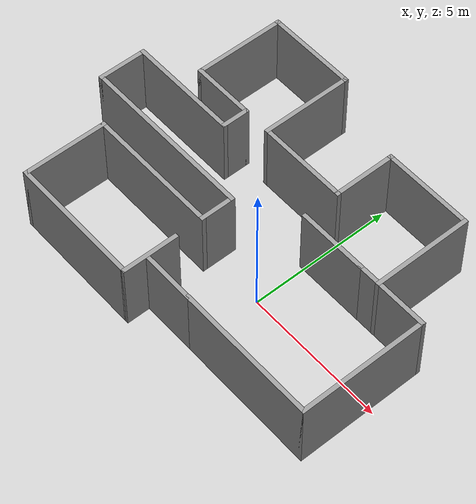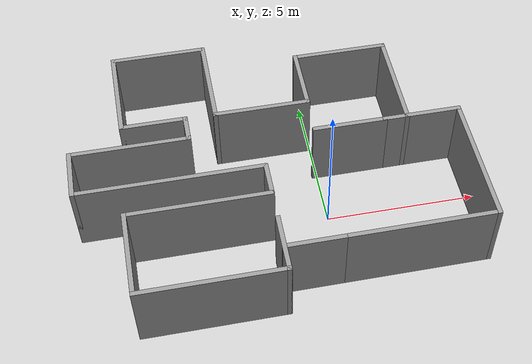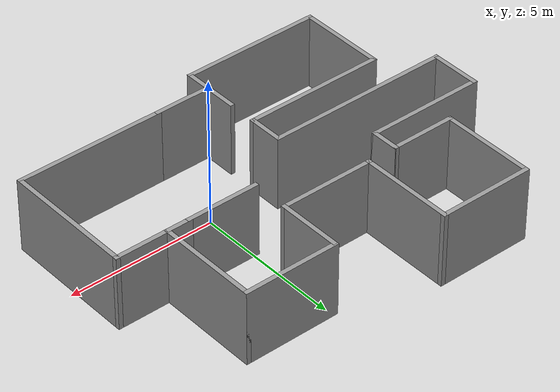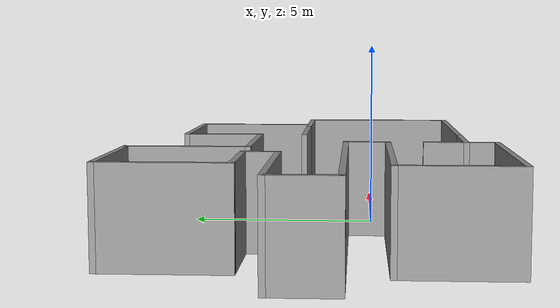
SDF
<?xml version='1.0'?>
<sdf version='1.7'>
  <model name='my_house'>
    <pose>-1.64 1.49 0 0 -0 0</pose>
    <link name='Wall_16'>
      <collision name='Wall_16_Collision'>
        <geometry>
          <box>
            <size>2.25 0.15 2.5</size>
          </box>
        </geometry>
        <pose>0 0 1.25 0 -0 0</pose>
      </collision>
      <visual name='Wall_16_Visual'>
        <pose>0 0 1.25 0 -0 0</pose>
        <geometry>
          <box>
            <size>2.25 0.15 2.5</size>
          </box>
        </geometry>
        <material>
          <script>
            <uri>file://media/materials/scripts/gazebo.material</uri>
            <name>Gazebo/Grey</name>
          </script>
          <ambient>1 1 1 1</ambient>
        </material>
        <meta>
          <layer>0</layer>
        </meta>
      </visual>
      <pose>1.55 2.7 0 0 -0 -1.5708</pose>
    </link>
    <link name='Wall_21'>
      <collision name='Wall_21_Collision'>
        <geometry>
          <box>
            <size>3.25 0.15 2.5</size>
          </box>
        </geometry>
        <pose>0 0 1.25 0 -0 0</pose>
      </collision>
      <visual name='Wall_21_Visual'>
        <pose>0 0 1.25 0 -0 0</pose>
        <geometry>
          <box>
            <size>3.25 0.15 2.5</size>
          </box>
        </geometry>
        <material>
          <script>
            <uri>file://media/materials/scripts/gazebo.material</uri>
            <name>Gazebo/Grey</name>
          </script>
          <ambient>1 1 1 1</ambient>
        </material>
        <meta>
          <layer>0</layer>
        </meta>
      </visual>
      <pose>-0 1.65 0 0 -0 3.14159</pose>
    </link>
    <link name='Wall_23'>
      <collision name='Wall_23_Collision'>
        <geometry>
          <box>
            <size>3.25 0.15 2.5</size>
          </box>
        </geometry>
        <pose>0 0 1.25 0 -0 0</pose>
      </collision>
      <visual name='Wall_23_Visual'>
        <pose>0 0 1.25 0 -0 0</pose>
        <geometry>
          <box>
            <size>3.25 0.15 2.5</size>
          </box>
        </geometry>
        <material>
          <script>
            <uri>file://media/materials/scripts/gazebo.material</uri>
            <name>Gazebo/Grey</name>
          </script>
          <ambient>1 1 1 1</ambient>
        </material>
        <meta>
          <layer>0</layer>
        </meta>
      </visual>
      <pose>-1.55 3.2 0 0 -0 1.5708</pose>
    </link>
    <link name='Wall_24'>
      <collision name='Wall_24_Collision'>
        <geometry>
          <box>
            <size>3.25 0.15 2.5</size>
          </box>
        </geometry>
        <pose>0 0 1.25 0 -0 0</pose>
      </collision>
      <visual name='Wall_24_Visual'>
        <pose>0 0 1.25 0 -0 0</pose>
        <geometry>
          <box>
            <size>3.25 0.15 2.5</size>
          </box>
        </geometry>
        <material>
          <script>
            <uri>file://media/materials/scripts/gazebo.material</uri>
            <name>Gazebo/Grey</name>
          </script>
          <ambient>1 1 1 1</ambient>
        </material>
        <meta>
          <layer>0</layer>
        </meta>
      </visual>
      <pose>-3.1 4.75 0 0 -0 3.14159</pose>
    </link>
    <link name='Wall_25'>
      <collision name='Wall_25_Collision'>
        <geometry>
          <box>
            <size>3.25 0.15 2.5</size>
          </box>
        </geometry>
        <pose>0 0 1.25 0 -0 0</pose>
      </collision>
      <visual name='Wall_25_Visual'>
        <pose>0 0 1.25 0 -0 0</pose>
        <geometry>
          <box>
            <size>3.25 0.15 2.5</size>
          </box>
        </geometry>
        <material>
          <script>
            <uri>file://media/materials/scripts/gazebo.material</uri>
            <name>Gazebo/Grey</name>
          </script>
          <ambient>1 1 1 1</ambient>
        </material>
        <meta>
          <layer>0</layer>
        </meta>
      </visual>
      <pose>-4.65 3.2 0 0 -0 -1.5708</pose>
    </link>
    <link name='Wall_26'>
      <collision name='Wall_26_Collision'>
        <geometry>
          <box>
            <size>2.25 0.15 2.5</size>
          </box>
        </geometry>
        <pose>0 0 1.25 0 -0 0</pose>
      </collision>
      <visual name='Wall_26_Visual'>
        <pose>0 0 1.25 0 -0 0</pose>
        <geometry>
          <box>
            <size>2.25 0.15 2.5</size>
          </box>
        </geometry>
        <material>
          <script>
            <uri>file://media/materials/scripts/gazebo.material</uri>
            <name>Gazebo/Grey</name>
          </script>
          <ambient>1 1 1 1</ambient>
        </material>
        <meta>
          <layer>0</layer>
        </meta>
      </visual>
      <pose>-3.6 1.65 0 0 -0 0</pose>
    </link>
    <link name='Wall_28'>
      <collision name='Wall_28_Collision'>
        <geometry>
          <box>
            <size>1 0.15 2.5</size>
          </box>
        </geometry>
        <pose>0 0 1.25 0 -0 0</pose>
      </collision>
      <visual name='Wall_28_Visual'>
        <pose>0 0 1.25 0 -0 0</pose>
        <geometry>
          <box>
            <size>1 0.15 2.5</size>
          </box>
        </geometry>
        <material>
          <script>
            <uri>file://media/materials/scripts/gazebo.material</uri>
            <name>Gazebo/Grey</name>
          </script>
          <ambient>1 1 1 1</ambient>
        </material>
        <meta>
          <layer>0</layer>
        </meta>
      </visual>
      <pose>-2.55 1.225 0 0 -0 -1.5708</pose>
    </link>
    <link name='Wall_29'>
      <collision name='Wall_29_Collision'>
        <geometry>
          <box>
            <size>4 0.15 2.5</size>
          </box>
        </geometry>
        <pose>0 0 1.25 0 -0 0</pose>
      </collision>
      <visual name='Wall_29_Visual'>
        <pose>0 0 1.25 0 -0 0</pose>
        <geometry>
          <box>
            <size>4 0.15 2.5</size>
          </box>
        </geometry>
        <material>
          <script>
            <uri>file://media/materials/scripts/gazebo.material</uri>
            <name>Gazebo/Grey</name>
          </script>
          <ambient>1 1 1 1</ambient>
        </material>
        <meta>
          <layer>0</layer>
        </meta>
      </visual>
      <pose>-4.475 0.8 0 0 -0 3.14159</pose>
    </link>
    <link name='Wall_30'>
      <collision name='Wall_30_Collision'>
        <geometry>
          <box>
            <size>1.75 0.15 2.5</size>
          </box>
        </geometry>
        <pose>0 0 1.25 0 -0 0</pose>
      </collision>
      <visual name='Wall_30_Visual'>
        <pose>0 0 1.25 0 -0 0</pose>
        <geometry>
          <box>
            <size>1.75 0.15 2.5</size>
          </box>
        </geometry>
        <material>
          <script>
            <uri>file://media/materials/scripts/gazebo.material</uri>
            <name>Gazebo/Grey</name>
          </script>
          <ambient>1 1 1 1</ambient>
        </material>
        <meta>
          <layer>0</layer>
        </meta>
      </visual>
      <pose>-6.4 -0 0 0 -0 -1.5708</pose>
    </link>
    <link name='Wall_31'>
      <collision name='Wall_31_Collision'>
        <geometry>
          <box>
            <size>6.25 0.15 2.5</size>
          </box>
        </geometry>
        <pose>0 0 1.25 0 -0 0</pose>
      </collision>
      <visual name='Wall_31_Visual'>
        <pose>0 0 1.25 0 -0 0</pose>
        <geometry>
          <box>
            <size>6.25 0.15 2.5</size>
          </box>
        </geometry>
        <material>
          <script>
            <uri>file://media/materials/scripts/gazebo.material</uri>
            <name>Gazebo/Grey</name>
          </script>
          <ambient>1 1 1 1</ambient>
        </material>
        <meta>
          <layer>0</layer>
        </meta>
      </visual>
      <pose>-3.35 -0.8 0 0 -0 0</pose>
    </link>
    <link name='Wall_33'>
      <collision name='Wall_33_Collision'>
        <geometry>
          <box>
            <size>1.25 0.15 2.5</size>
          </box>
        </geometry>
        <pose>0 0 1.25 0 -0 0</pose>
      </collision>
      <visual name='Wall_33_Visual'>
        <pose>0 0 1.25 0 -0 0</pose>
        <geometry>
          <box>
            <size>1.25 0.15 2.5</size>
          </box>
        </geometry>
        <material>
          <script>
            <uri>file://media/materials/scripts/gazebo.material</uri>
            <name>Gazebo/Grey</name>
          </script>
          <ambient>1 1 1 1</ambient>
        </material>
        <meta>
          <layer>0</layer>
        </meta>
      </visual>
      <pose>-0.3 -1.35 0 0 -0 -1.5708</pose>
    </link>
    <link name='Wall_34'>
      <collision name='Wall_34_Collision'>
        <geometry>
          <box>
            <size>4.75 0.15 2.5</size>
          </box>
        </geometry>
        <pose>0 0 1.25 0 -0 0</pose>
      </collision>
      <visual name='Wall_34_Visual'>
        <pose>0 0 1.25 0 -0 0</pose>
        <geometry>
          <box>
            <size>4.75 0.15 2.5</size>
          </box>
        </geometry>
        <material>
          <script>
            <uri>file://media/materials/scripts/gazebo.material</uri>
            <name>Gazebo/Grey</name>
          </script>
          <ambient>1 1 1 1</ambient>
        </material>
        <meta>
          <layer>0</layer>
        </meta>
      </visual>
      <pose>-2.6 -1.9 0 0 -0 3.14159</pose>
    </link>
    <link name='Wall_36'>
      <collision name='Wall_36_Collision'>
        <geometry>
          <box>
            <size>3 0.15 2.5</size>
          </box>
        </geometry>
        <pose>0 0 1.25 0 -0 0</pose>
      </collision>
      <visual name='Wall_36_Visual'>
        <pose>0 0 1.25 0 -0 0</pose>
        <geometry>
          <box>
            <size>3 0.15 2.5</size>
          </box>
        </geometry>
        <material>
          <script>
            <uri>file://media/materials/scripts/gazebo.material</uri>
            <name>Gazebo/Grey</name>
          </script>
          <ambient>1 1 1 1</ambient>
        </material>
        <meta>
          <layer>0</layer>
        </meta>
      </visual>
      <pose>-4.9 -3.325 0 0 -0 -1.5708</pose>
    </link>
    <link name='Wall_37'>
      <collision name='Wall_37_Collision'>
        <geometry>
          <box>
            <size>4.75 0.15 2.5</size>
          </box>
        </geometry>
        <pose>0 0 1.25 0 -0 0</pose>
      </collision>
      <visual name='Wall_37_Visual'>
        <pose>0 0 1.25 0 -0 0</pose>
        <geometry>
          <box>
            <size>4.75 0.15 2.5</size>
          </box>
        </geometry>
        <material>
          <script>
            <uri>file://media/materials/scripts/gazebo.material</uri>
            <name>Gazebo/Grey</name>
          </script>
          <ambient>1 1 1 1</ambient>
        </material>
        <meta>
          <layer>0</layer>
        </meta>
      </visual>
      <pose>-2.6 -4.75 0 0 -0 0</pose>
    </link>
    <link name='Wall_38'>
      <collision name='Wall_38_Collision'>
        <geometry>
          <box>
            <size>2 0.15 2.5</size>
          </box>
        </geometry>
        <pose>0 0 1.25 0 -0 0</pose>
      </collision>
      <visual name='Wall_38_Visual'>
        <pose>0 0 1.25 0 -0 0</pose>
        <geometry>
          <box>
            <size>2 0.15 2.5</size>
          </box>
        </geometry>
        <material>
          <script>
            <uri>file://media/materials/scripts/gazebo.material</uri>
            <name>Gazebo/Grey</name>
          </script>
          <ambient>1 1 1 1</ambient>
        </material>
        <meta>
          <layer>0</layer>
        </meta>
      </visual>
      <pose>-0.3 -3.825 0 0 -0 1.5708</pose>
    </link>
    <link name='Wall_40'>
      <collision name='Wall_40_Collision'>
        <geometry>
          <box>
            <size>2 0.15 2.5</size>
          </box>
        </geometry>
        <pose>0 0 1.25 0 -0 0</pose>
      </collision>
      <visual name='Wall_40_Visual'>
        <pose>0 0 1.25 0 -0 0</pose>
        <geometry>
          <box>
            <size>2 0.15 2.5</size>
          </box>
        </geometry>
        <material>
          <script>
            <uri>file://media/materials/scripts/gazebo.material</uri>
            <name>Gazebo/Grey</name>
          </script>
          <ambient>1 1 1 1</ambient>
        </material>
        <meta>
          <layer>0</layer>
        </meta>
      </visual>
      <pose>0.625 -3.95 0 0 -0 3.14159</pose>
    </link>
    <link name='Wall_43'>
      <collision name='Wall_43_Collision'>
        <geometry>
          <box>
            <size>5 0.15 2.5</size>
          </box>
        </geometry>
        <pose>0 0 1.25 0 -0 0</pose>
      </collision>
      <visual name='Wall_43_Visual'>
        <pose>0 0 1.25 0 -0 0</pose>
        <geometry>
          <box>
            <size>5 0.15 2.5</size>
          </box>
        </geometry>
        <material>
          <script>
            <uri>file://media/materials/scripts/gazebo.material</uri>
            <name>Gazebo/Grey</name>
          </script>
          <ambient>1 1 1 1</ambient>
        </material>
        <meta>
          <layer>0</layer>
        </meta>
      </visual>
      <pose>3.975 -3.95 0 0 -0 0</pose>
    </link>
    <link name='Wall_44'>
      <collision name='Wall_44_Collision'>
        <geometry>
          <box>
            <size>4.5 0.15 2.5</size>
          </box>
        </geometry>
        <pose>0 0 1.25 0 -0 0</pose>
      </collision>
      <visual name='Wall_44_Visual'>
        <pose>0 0 1.25 0 -0 0</pose>
        <geometry>
          <box>
            <size>4.5 0.15 2.5</size>
          </box>
        </geometry>
        <material>
          <script>
            <uri>file://media/materials/scripts/gazebo.material</uri>
            <name>Gazebo/Grey</name>
          </script>
          <ambient>1 1 1 1</ambient>
        </material>
        <meta>
          <layer>0</layer>
        </meta>
      </visual>
      <pose>6.4 -1.775 0 0 -0 1.5708</pose>
    </link>
    <link name='Wall_45'>
      <collision name='Wall_45_Collision'>
        <geometry>
          <box>
            <size>2.65 0.15 2.5</size>
          </box>
        </geometry>
        <pose>0 0 1.25 0 -0 0</pose>
      </collision>
      <visual name='Wall_45_Visual'>
        <pose>0 0 1.25 0 -0 0</pose>
        <geometry>
          <box>
            <size>2.65 0.15 2.5</size>
          </box>
        </geometry>
        <material>
          <script>
            <uri>file://media/materials/scripts/gazebo.material</uri>
            <name>Gazebo/Grey</name>
          </script>
          <ambient>1 1 1 1</ambient>
        </material>
        <meta>
          <layer>0</layer>
        </meta>
      </visual>
      <pose>5.15 0.4 0 0 -0 3.14159</pose>
    </link>
    <link name='Wall_47'>
      <collision name='Wall_47_Collision'>
        <geometry>
          <box>
            <size>3.25 0.15 2.5</size>
          </box>
        </geometry>
        <pose>0 0 1.25 0 -0 0</pose>
      </collision>
      <visual name='Wall_47_Visual'>
        <pose>0 0 1.25 0 -0 0</pose>
        <geometry>
          <box>
            <size>3.25 0.15 2.5</size>
          </box>
        </geometry>
        <material>
          <script>
            <uri>file://media/materials/scripts/gazebo.material</uri>
            <name>Gazebo/Grey</name>
          </script>
          <ambient>1 1 1 1</ambient>
        </material>
        <meta>
          <layer>0</layer>
        </meta>
      </visual>
      <pose>3.1 3.75 0 0 -0 0</pose>
    </link>
    <link name='Wall_48'>
      <collision name='Wall_48_Collision'>
        <geometry>
          <box>
            <size>3.5 0.15 2.5</size>
          </box>
        </geometry>
        <pose>0 0 1.25 0 -0 0</pose>
      </collision>
      <visual name='Wall_48_Visual'>
        <pose>0 0 1.25 0 -0 0</pose>
        <geometry>
          <box>
            <size>3.5 0.15 2.5</size>
          </box>
        </geometry>
        <material>
          <script>
            <uri>file://media/materials/scripts/gazebo.material</uri>
            <name>Gazebo/Grey</name>
          </script>
          <ambient>1 1 1 1</ambient>
        </material>
        <meta>
          <layer>0</layer>
        </meta>
      </visual>
      <pose>4.65 2.075 0 0 -0 -1.5708</pose>
    </link>
    <link name='Wall_8'>
      <collision name='Wall_8_Collision'>
        <geometry>
          <box>
            <size>2.5 0.15 2.5</size>
          </box>
        </geometry>
        <pose>0 0 1.25 0 -0 0</pose>
      </collision>
      <visual name='Wall_8_Visual'>
        <pose>0 0 1.25 0 -0 0</pose>
        <geometry>
          <box>
            <size>2.5 0.15 2.5</size>
          </box>
        </geometry>
        <material>
          <script>
            <uri>file://media/materials/scripts/gazebo.material</uri>
            <name>Gazebo/Grey</name>
          </script>
          <ambient>1 1 1 1</ambient>
        </material>
        <meta>
          <layer>0</layer>
        </meta>
      </visual>
      <pose>2.725 0.4 0 0 -0 0</pose>
    </link>
    <static>1</static>
  </model>
</sdf>
